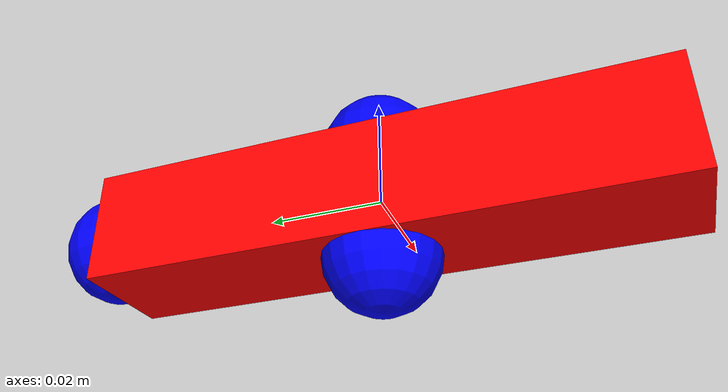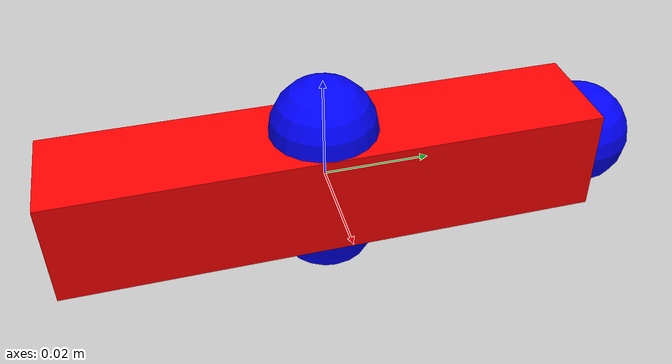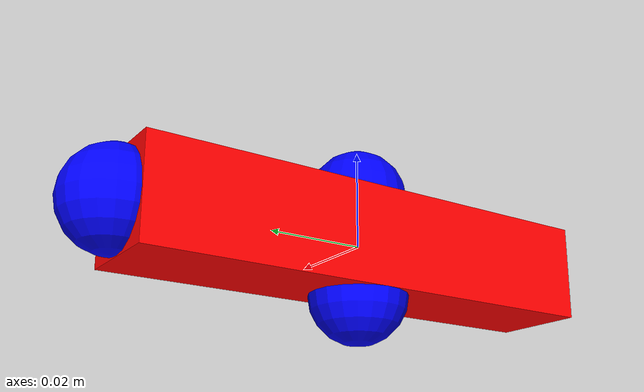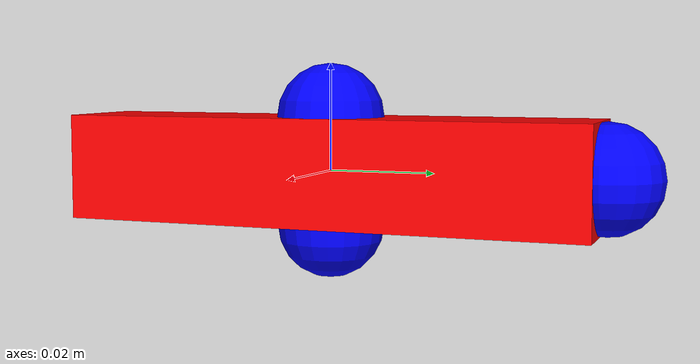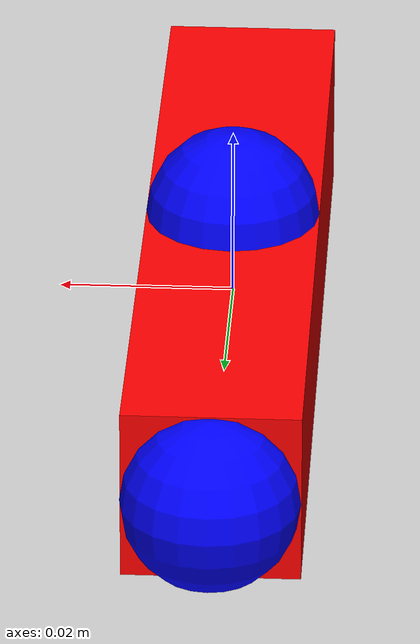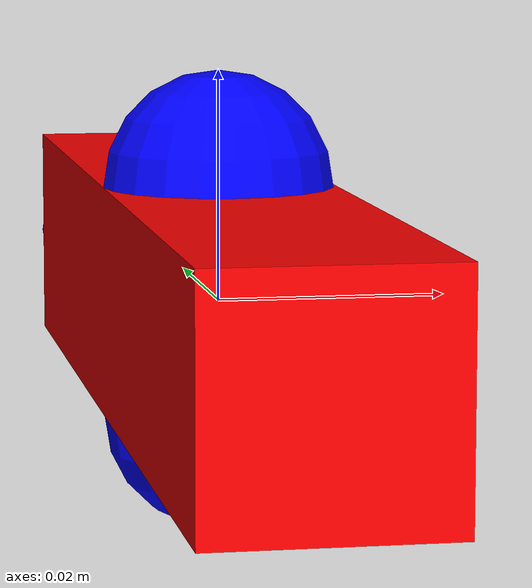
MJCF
<mujoco model="box">
  <worldbody>
    <body>
      <body name="object" pos="0 0 0">
        <inertial pos="0 0 0" mass="0.1" diaginertia="1e-4 1e-4 1e-4" />
        <geom name="box_geom" type="box" size="0.01 0.05 0.01" rgba="1 0 0 1"
              friction="0.6 0.005 0.001" group="1" conaffinity="1" contype="1"/>
        <site name="box_site" type="box" size="0.01 0.05 0.01" rgba="1 0 0 0.5" />
      </body>

      <!-- Critical: Fix these sites! -->
      <site rgba="0 0 1 1" size="0.01" pos="0 0 -0.01" name="bottom_site"/>
      <site rgba="0 0 1 1" size="0.01" pos="0 0 0.01" name="top_site"/>
      <site rgba="0 0 1 1" size="0.01" pos="0 0.051 0" name="horizontal_radius_site"/>
    </body>
  </worldbody>
</mujoco>
